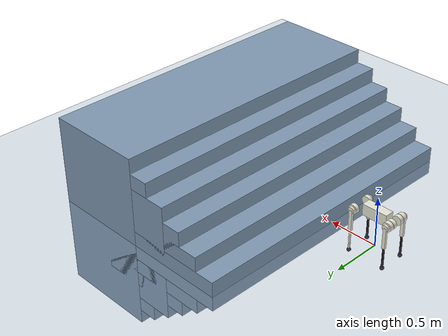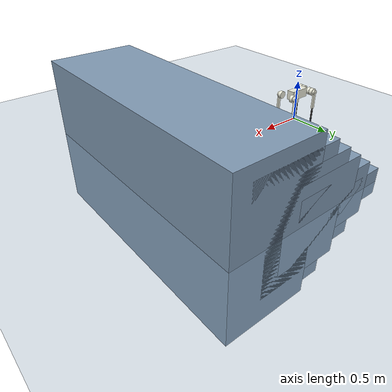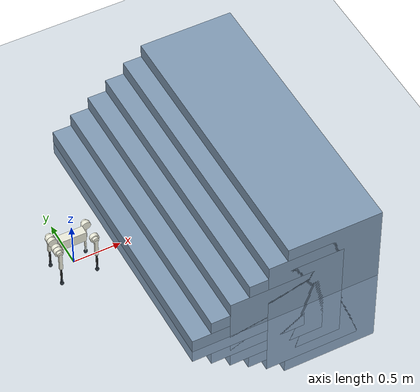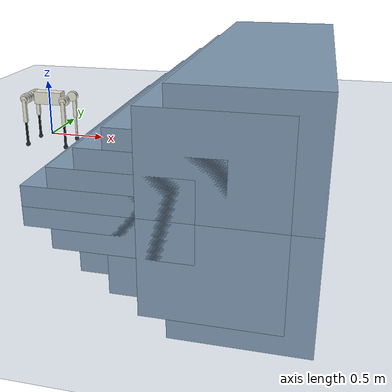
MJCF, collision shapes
<mujoco model="go1_scene">
  <!-- 1) 로봇 본체 불러오기 -->
  <include file="go1.xml"/>

  <statistic center="1.0 0.7 1.0" extent="0.8"/>

  <visual>
    <headlight diffuse="0.6 0.6 0.6" ambient="0.1 0.1 0.1" specular="0.9 0.9 0.9"/>
    <rgba haze="0.15 0.25 0.35 1"/>
    <global azimuth="-140" elevation="-20"/>
  </visual>

  <asset>
    <texture type="skybox" builtin="flat" rgb1="0 0 0" rgb2="0 0 0" width="512" height="3072"/>
    <texture type="2d" name="groundplane" builtin="checker" mark="edge" rgb1="0.2 0.3 0.4" rgb2="0.1 0.2 0.3" markrgb="0.8 0.8 0.8" width="300" height="300"/>
    <material name="groundplane" texture="groundplane" texuniform="true" texrepeat="5 5" reflectance="0.2"/>

  </asset>

  <worldbody>
    <light pos="1 0 3.5" dir="0 0 -1" directional="true"/>
    <geom name="floor" size="0 0 0.05" type="plane" material="groundplane"/>
    <geom type="box" size="0.5 1.5 0.15" pos="1.0 0 0.0"   material="groundplane"/>
    <geom type="box" size="0.5 1.5 0.3" pos="1.2 0 0.0"   material="groundplane"/>
    <geom type="box" size="0.5 1.5 0.45" pos="1.4 0 0.0"   material="groundplane"/>
    <geom type="box" size="0.5 1.5 0.60" pos="1.6 0 0.0"   material="groundplane"/>
    <geom type="box" size="0.5 1.5 0.75" pos="1.8 0 0.0"   material="groundplane"/>
    <geom type="box" size="0.5 1.5 0.90" pos="2.0 0 0.0"   material="groundplane"/>

  </worldbody>
</mujoco>

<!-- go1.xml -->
<mujoco model="go1_description">
    <compiler angle="radian" meshdir="../meshes/" />
    <size njmax="500" nconmax="100" />
    <option gravity='0 0 -9.806' iterations='50' solver='Newton' timestep='0.002'/>

    <default>
        <geom contype="1" conaffinity="1" friction="1.0 0.8 0.8" rgba="0.5 0.6 0.7 1" margin="0.001" group="0"/>

        <light castshadow="false" diffuse="1 1 1"/>
        <motor ctrlrange="-33.5 33.5" ctrllimited="true"/>
        <camera fovy="60"/>
        <joint damping="0.01" armature="0.01" frictionloss="0.2" />

    </default>

    <asset>
        <mesh name="trunk" file="trunk.stl" />
        <mesh name="hip" file="hip.stl" />
        <mesh name="thigh_mirror" file="thigh_mirror.stl" />
        <mesh name="calf" file="calf.stl" />
        <mesh name="thigh" file="thigh.stl" />
    </asset>

    <asset>
        <texture type="skybox" builtin="gradient" rgb1="1.0 1.0 1.0" rgb2="1.0 1.0 1.0" width="512" height="512"/>
        <texture name="plane" type="2d" builtin="flat" rgb1="1 1 1" rgb2="1 1 1" width="512" height="512" mark="cross" markrgb="0 0 0"/>
        <material name="plane" reflectance="0.0" texture="plane" texrepeat="3 3" texuniform="true"/>
    </asset>

    <visual>
        <rgba com="0.502 1.0 0 0.5" contactforce="0.98 0.4 0.4 0.7" contactpoint="1.0 1.0 0.6 0.4"/>
        <scale com="0.2" forcewidth="0.035" contactwidth="0.10" contactheight="0.04"/>
    </visual>

    <worldbody>
        <light directional="true" diffuse=".8 .8 .8" pos="0 0 10" dir="0 0 -10"/>
        <camera name="track" mode="trackcom" pos="0 -1.3 1.6" xyaxes="1 0 0 0 0.707 0.707"/>

        <body name="trunk" pos="0 0 0.35">
            <inertial pos="0.0116053 0.00442221 0.000106692" quat="0.0111438 0.707126 -0.00935374 0.706938" mass="4.801" diaginertia="0.0447997 0.0366257 0.0162187" />
            <joint type="free" />
            <geom type="mesh" contype="0" conaffinity="0" group="1" rgba="0.913725 0.913725 0.847059 1" mesh="trunk" />
            <geom size="0.13 0.04675 0.057" type="box" rgba="0.913725 0.913725 0.847059 1" />
            <geom size="0.0005 0.0005 0.0005" pos="-0.01592 -0.06659 -0.00617" type="box" contype="0" conaffinity="0" group="1" rgba="0.8 0 0 0" />
            <geom size="0.0005 0.0005 0.0005" pos="-0.01592 -0.06659 -0.00617" type="box" rgba="0.8 0 0 0" />
            <site name="imu" pos="0 0 0"/>

            <body name="FR_hip" pos="0.1881 -0.04675 0">
                <inertial pos="-0.00406411 -0.0193463 4.50733e-06" quat="0.467526 0.531662 -0.466259 0.530431" mass="0.679292" diaginertia="0.00131334 0.00122648 0.000728484" />
                <joint name="FR_hip_joint" pos="0 0 0" axis="1 0 0" limited="true" range="-0.802851 0.802851" />
                <geom quat="0 1 0 0" type="mesh" contype="0" conaffinity="0" group="1" rgba="0.913725 0.913725 0.847059 1" mesh="hip" />
                <geom size="0.046 0.02" pos="0 -0.045 0" quat="0.707107 0.707107 0 0" type="cylinder" rgba="0.913725 0.913725 0.847059 0" />
                <geom size="0.031 0.02" pos="0 -0.07 0" quat="0.707107 0.707107 0 0" type="cylinder" rgba="0.913725 0.913725 0.847059 0" />

                <body name="FR_thigh" pos="0 -0.08 0">
                    <inertial pos="-0.003468 0.018947 -0.032736" quat="0.999266 0.00067676 -0.0382978 0.000639813" mass="0.898919" diaginertia="0.00542178 0.00514246 0.000998869" />
                    <joint name="FR_thigh_joint" pos="0 0 0" axis="0 1 0" limited="true" range="-1.0472 4.18879" />
                    <geom type="mesh" contype="0" conaffinity="0" group="1" rgba="0.913725 0.913725 0.847059 1" mesh="thigh_mirror" />
                    <geom size="0.1065 0.01225 0.017" pos="0 0 -0.1065" quat="0.707107 0 0.707107 0" type="box" rgba="0.913725 0.913725 0.847059 0" />
                    <body name="FR_calf" pos="0 0 -0.213">
                        <inertial pos="0.00455603 0.0009473 -0.147239" quat="0.762045 0.00970173 0.0180098 0.647201" mass="0.218015" diaginertia="0.00399678 0.00398122 3.99428e-05" />
                        <joint name="FR_calf_joint" pos="0 0 0" axis="0 1 0" limited="true" range="-2.69653 -0.916298" />
                        <geom type="mesh" contype="0" conaffinity="0" group="1" rgba="0 0 0 1" mesh="calf" />
                        <geom size="0.1065 0.008 0.008" pos="0 0 -0.1065" quat="0.707107 0 0.707107 0" type="box" rgba="0 0 0 0" />
                        <geom size="0.01" pos="0 0 -0.213" contype="0" conaffinity="0" group="1" rgba="0 0 0 1" />
                        <geom size="0.02" pos="0 0 -0.213" rgba="0 0 0 1" />
                    </body>
                </body>
            </body>
            <body name="FL_hip" pos="0.1881 0.04675 0">
                <inertial pos="-0.00406411 0.0193463 4.50733e-06" quat="0.531662 0.467526 -0.530431 0.466259" mass="0.679292" diaginertia="0.00131334 0.00122648 0.000728484" />
                <joint name="FL_hip_joint" pos="0 0 0" axis="1 0 0" limited="true" range="-0.802851 0.802851" />
                <geom type="mesh" contype="0" conaffinity="0" group="1" rgba="0.913725 0.913725 0.847059 1" mesh="hip" />
                <geom size="0.046 0.02" pos="0 0.045 0" quat="0.707107 0.707107 0 0" type="cylinder" rgba="0.913725 0.913725 0.847059 0" />
                <geom size="0.031 0.02" pos="0 0.07 0" quat="0.707107 0.707107 0 0" type="cylinder" rgba="0.913725 0.913725 0.847059 0" />

                <body name="FL_thigh" pos="0 0.08 0">
                    <inertial pos="-0.003468 -0.018947 -0.032736" quat="0.999266 -0.00067676 -0.0382978 -0.000639813" mass="0.898919" diaginertia="0.00542178 0.00514246 0.000998869" />
                    <joint name="FL_thigh_joint" pos="0 0 0" axis="0 1 0" limited="true" range="-1.0472 4.18879" />
                    <geom type="mesh" contype="0" conaffinity="0" group="1" rgba="0.913725 0.913725 0.847059 1" mesh="thigh" />
                    <geom size="0.1065 0.01225 0.017" pos="0 0 -0.1065" quat="0.707107 0 0.707107 0" type="box" rgba="0.913725 0.913725 0.847059 0" />
                    <body name="FL_calf" pos="0 0 -0.213">
                        <inertial pos="0.00455603 0.0009473 -0.147239" quat="0.762045 0.00970173 0.0180098 0.647201" mass="0.218015" diaginertia="0.00399678 0.00398122 3.99428e-05" />
                        <joint name="FL_calf_joint" pos="0 0 0" axis="0 1 0" limited="true" range="-2.69653 -0.916298" />
                        <geom type="mesh" contype="0" conaffinity="0" group="1" rgba="0 0 0 1" mesh="calf" />
                        <geom size="0.1065 0.008 0.008" pos="0 0 -0.1065" quat="0.707107 0 0.707107 0" type="box" rgba="0.913725 0.913725 0.847059 0" />
                        <geom size="0.01" pos="0 0 -0.213" contype="0" conaffinity="0" group="1" rgba="0 0 0 1" />
                        <geom size="0.02" pos="0 0 -0.213" rgba="0 0 0 1" />
                    </body>
                </body>
            </body>
            <body name="RR_hip" pos="-0.1881 -0.04675 0">
                <inertial pos="0.00406411 -0.0193463 4.50733e-06" quat="0.530431 0.466259 -0.531662 0.467526" mass="0.679292" diaginertia="0.00131334 0.00122648 0.000728484" />
                <joint name="RR_hip_joint" pos="0 0 0" axis="1 0 0" limited="true" range="-0.802851 0.802851" />
                <geom quat="0 0 0 -1" type="mesh" contype="0" conaffinity="0" group="1" rgba="0.913725 0.913725 0.847059 1" mesh="hip" />
                <geom size="0.046 0.02" quat="0.707107 0.707107 0 0" type="cylinder" rgba="0.913725 0.913725 0.847059 1" />
                <geom size="0.046 0.02" pos="0 -0.045 0" quat="0.707107 0.707107 0 0" type="cylinder" rgba="0.913725 0.913725 0.847059 0" />
                <geom size="0.031 0.02" pos="0 -0.07 0" quat="0.707107 0.707107 0 0" type="cylinder" rgba="0.913725 0.913725 0.847059 0" />

                <body name="RR_thigh" pos="0 -0.08 0">
                    <inertial pos="-0.003468 0.018947 -0.032736" quat="0.999266 0.00067676 -0.0382978 0.000639813" mass="0.898919" diaginertia="0.00542178 0.00514246 0.000998869" />
                    <joint name="RR_thigh_joint" pos="0 0 0" axis="0 1 0" limited="true" range="-1.0472 4.18879" />
                    <geom type="mesh" contype="0" conaffinity="0" group="1" rgba="0.913725 0.913725 0.847059 1" mesh="thigh_mirror" />
                    <geom size="0.1065 0.01225 0.017" pos="0 0 -0.1065" quat="0.707107 0 0.707107 0" type="box" rgba="0.913725 0.913725 0.847059 0" />
                    <body name="RR_calf" pos="0 0 -0.213">
                        <inertial pos="0.00455603 0.0009473 -0.147239" quat="0.762045 0.00970173 0.0180098 0.647201" mass="0.218015" diaginertia="0.00399678 0.00398122 3.99428e-05" />
                        <joint name="RR_calf_joint" pos="0 0 0" axis="0 1 0" limited="true" range="-2.69653 -0.916298" />
                        <geom type="mesh" contype="0" conaffinity="0" group="1" rgba="0 0 0 1" mesh="calf" />
                        <geom size="0.1065 0.008 0.008" pos="0 0 -0.1065" quat="0.707107 0 0.707107 0" type="box" rgba="0 0 0 0" />
                        <geom size="0.01" pos="0 0 -0.213" contype="0" conaffinity="0" group="1" rgba="0 0 0 1" />
                        <geom size="0.02" pos="0 0 -0.213" rgba="0 0 0 1" />
                    </body>
                </body>
            </body>
            <body name="RL_hip" pos="-0.1881 0.04675 0">
                <inertial pos="0.00406411 0.0193463 4.50733e-06" quat="0.466259 0.530431 -0.467526 0.531662" mass="0.679292" diaginertia="0.00131334 0.00122648 0.000728484" />
                <joint name="RL_hip_joint" pos="0 0 0" axis="1 0 0" limited="true" range="-0.802851 0.802851"  />
                <geom quat="0 0 1 0" type="mesh" contype="0" conaffinity="0" group="1" rgba="0.913725 0.913725 0.847059 1" mesh="hip" />
                <geom size="0.046 0.02" quat="0.707107 0.707107 0 0" type="cylinder" rgba="0.913725 0.913725 0.847059 1" />
                <geom size="0.046 0.02" pos="0 0.045 0" quat="0.707107 0.707107 0 0" type="cylinder" rgba="0.913725 0.913725 0.847059 0" />
                <geom size="0.031 0.02" pos="0 0.07 0" quat="0.707107 0.707107 0 0" type="cylinder" rgba="0.913725 0.913725 0.847059 0" />

                <body name="RL_thigh" pos="0 0.08 0">
                    <inertial pos="-0.003468 -0.018947 -0.032736" quat="0.999266 -0.00067676 -0.0382978 -0.000639813" mass="0.898919" diaginertia="0.00542178 0.00514246 0.000998869" />
                    <joint name="RL_thigh_joint" pos="0 0 0" axis="0 1 0" limited="true" range="-1.0472 4.18879" />
                    <geom type="mesh" contype="0" conaffinity="0" group="1" rgba="0.913725 0.913725 0.847059 1" mesh="thigh" />
                    <geom size="0.1065 0.01225 0.017" pos="0 0 -0.1065" quat="0.707107 0 0.707107 0" type="box" rgba="0.913725 0.913725 0.847059 0" />
                    <body name="RL_calf" pos="0 0 -0.213">
                        <inertial pos="0.00455603 0.0009473 -0.147239" quat="0.762045 0.00970173 0.0180098 0.647201" mass="0.218015" diaginertia="0.00399678 0.00398122 3.99428e-05" />
                        <joint name="RL_calf_joint" pos="0 0 0" axis="0 1 0" limited="true" range="-2.69653 -0.916298" />
                        <geom type="mesh" contype="0" conaffinity="0" group="1" rgba="0 0 0 1" mesh="calf" />
                        <geom size="0.1065 0.008 0.008" pos="0 0 -0.1065" quat="0.707107 0 0.707107 0" type="box" rgba="0 0 0 0" />
                        <geom size="0.01" pos="0 0 -0.213" contype="0" conaffinity="0" group="1" rgba="0 0 0 1" />
                        <geom size="0.02" pos="0 0 -0.213" rgba="0 0 0 1" />
                    </body>
                </body>
            </body>
        </body>
    </worldbody>
    <actuator>

        <motor name="FR_hip"       gear="1" joint="FR_hip_joint"/>
        <motor name="FR_thigh"     gear="1" joint="FR_thigh_joint"/>
        <motor name="FR_calf"      gear="1" joint="FR_calf_joint"/>
        <motor name="FL_hip"       gear="1" joint="FL_hip_joint"/>
        <motor name="FL_thigh"     gear="1" joint="FL_thigh_joint"/>
        <motor name="FL_calf"      gear="1" joint="FL_calf_joint"/>
        <motor name="RR_hip"       gear="1" joint="RR_hip_joint"/>
        <motor name="RR_thigh"     gear="1" joint="RR_thigh_joint"/>
        <motor name="RR_calf"      gear="1" joint="RR_calf_joint" />
        <motor name="RL_hip"       gear="1" joint="RL_hip_joint"/>
        <motor name="RL_thigh"     gear="1" joint="RL_thigh_joint"/>
        <motor name="RL_calf"      gear="1" joint="RL_calf_joint"/>
    </actuator>

    <sensor>

        <jointpos name="FR_hip_pos"     joint="FR_hip_joint"/>
        <jointpos name="FR_thigh_pos"   joint="FR_thigh_joint"/>
        <jointpos name="FR_calf_pos"    joint="FR_calf_joint"/>
        <jointpos name="FL_hip_pos"     joint="FL_hip_joint"/>
        <jointpos name="FL_thigh_pos"   joint="FL_thigh_joint"/>
        <jointpos name="FL_calf_pos"    joint="FL_calf_joint"/>
        <jointpos name="RR_hip_pos"     joint="RR_hip_joint"/>
        <jointpos name="RR_thigh_pos"   joint="RR_thigh_joint"/>
        <jointpos name="RR_calf_pos"    joint="RR_calf_joint" />
        <jointpos name="RL_hip_pos"     joint="RL_hip_joint"/>
        <jointpos name="RL_thigh_pos"   joint="RL_thigh_joint"/>
        <jointpos name="RL_calf_pos"    joint="RL_calf_joint"/>

        <jointvel name="FR_hip_vel"     joint="FR_hip_joint"/>
        <jointvel name="FR_thigh_vel"   joint="FR_thigh_joint"/>
        <jointvel name="FR_calf_vel"    joint="FR_calf_joint"/>
        <jointvel name="FL_hip_vel"     joint="FL_hip_joint"/>
        <jointvel name="FL_thigh_vel"   joint="FL_thigh_joint"/>
        <jointvel name="FL_calf_vel"    joint="FL_calf_joint"/>
        <jointvel name="RR_hip_vel"     joint="RR_hip_joint"/>
        <jointvel name="RR_thigh_vel"   joint="RR_thigh_joint"/>
        <jointvel name="RR_calf_vel"    joint="RR_calf_joint" />
        <jointvel name="RL_hip_vel"     joint="RL_hip_joint"/>
        <jointvel name="RL_thigh_vel"   joint="RL_thigh_joint"/>
        <jointvel name="RL_calf_vel"    joint="RL_calf_joint"/>

        <accelerometer name="Body_Acc" site="imu"/>

        <gyro name="Body_Gyro" site="imu"/>

        <framepos name="Body_Pos" objtype="site" objname="imu"/>

        <framequat name="Body_Quat" objtype="site" objname="imu"/>

    </sensor>
    <!-- base_link(body) ↔ world(body) -->
</mujoco>
